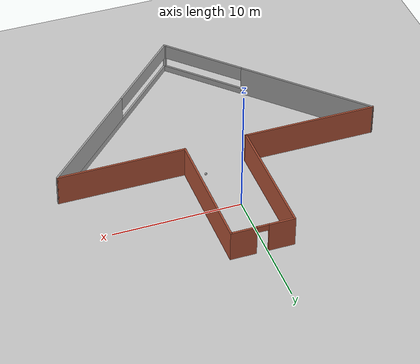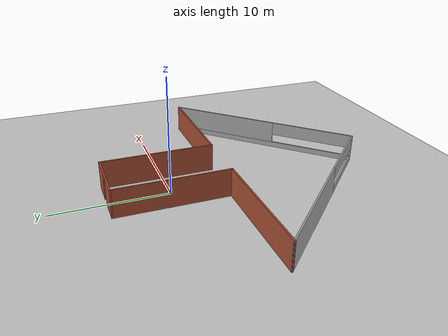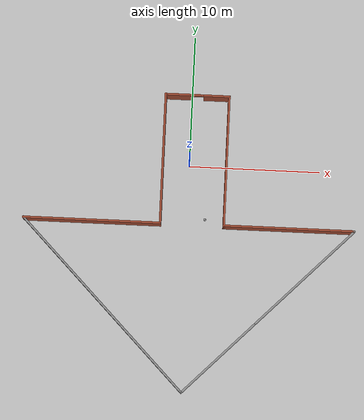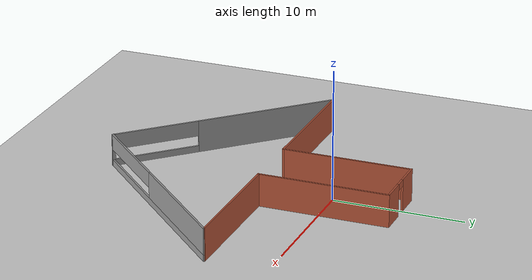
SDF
<sdf version="1.6">
 <world name="default">
  <plugin name="hello" filename="libhello.so"/>
  <light name="sun" type="directional">
   <pose>0 0 10 0 -0 0</pose>
   <diffuse>0.8 0.8 0.8 1</diffuse>
   <specular>0.2 0.2 0.2 1</specular>
   <attenuation>
    <range>1000</range>
    <constant>0.9</constant>
    <linear>0.01</linear>
    <quadratic>0.001</quadratic>
   </attenuation>
   <direction>-0.5 0.1 -0.9</direction>
  </light>
  <model name="ground_plane">
   <static>1</static>
   <link name="link">
    <collision name="collision">
     <geometry><plane><normal>0 0 1</normal><size>100 100</size></plane></geometry>
     <surface>
      <contact><collide_bitmask>65535</collide_bitmask></contact>
      <friction><ode><mu>100</mu><mu2>50</mu2></ode></friction>
     </surface>
    </collision>
    <visual name="visual">
     <cast_shadows>0</cast_shadows>
     <geometry><plane><normal>0 0 1</normal><size>100 100</size></plane></geometry>
     <material>
      <script><uri>file://media/materials/scripts/gazebo.material</uri><name>Gazebo/Grey</name></script>
     </material>
    </visual>
   </link>
  </model>
  <gravity>0 0 -9.8</gravity>
  <magnetic_field>6e-06 2.3e-05 -4.2e-05</magnetic_field>
  <atmosphere type="adiabatic"/>
  <physics name="default_physics" default="0" type="ode">
   <max_step_size>0.001</max_step_size>
   <real_time_factor>1</real_time_factor>
   <real_time_update_rate>1000</real_time_update_rate>
  </physics>
  <scene><ambient>0.4 0.4 0.4 1</ambient><background>0.7 0.7 0.7 1</background><shadows>1</shadows></scene>
  <spherical_coordinates>
   <surface_model>EARTH_WGS84</surface_model>
   <latitude_deg>0</latitude_deg>
   <longitude_deg>0</longitude_deg>
   <elevation>0</elevation>
   <heading_deg>0</heading_deg>
  </spherical_coordinates>
  <model name="FOR_PROJECT_1">
   <pose>0.14322 -6.05993 0 0 -0 0</pose>
   <link name="Wall_12">
    <collision name="Wall_12_Collision">
     <geometry><box><size>10 0.15 2.5</size></box></geometry>
     <pose>0 0 1.25 0 -0 0</pose>
    </collision>
    <visual name="Wall_12_Visual">
     <pose>0 0 1.25 0 -0 0</pose>
     <geometry><box><size>10 0.15 2.5</size></box></geometry>
     <material>
      <script><uri>file://media/materials/scripts/gazebo.material</uri><name>Gazebo/Bricks</name></script>
      <ambient>1 1 1 1</ambient>
     </material>
     <meta><layer>0</layer></meta>
    </visual>
    <pose>7.5816 1.45376 0 0 -0 0</pose>
   </link>
   <link name="Wall_19">
    <collision name="Wall_19_Collision">
     <geometry><box><size>10 0.15 2.5</size></box></geometry>
     <pose>0 0 1.25 0 -0 0</pose>
    </collision>
    <visual name="Wall_19_Visual">
     <pose>0 0 1.25 0 -0 0</pose>
     <geometry><box><size>10 0.15 2.5</size></box></geometry>
     <material>
      <script><uri>file://media/materials/scripts/gazebo.material</uri><name>Gazebo/Bricks</name></script>
      <ambient>1 1 1 1</ambient>
     </material>
     <meta><layer>0</layer></meta>
    </visual>
    <pose>-2.1934 6.37876 0 0 0 -1.5708</pose>
   </link>
   <link name="Wall_22">
    <collision name="Wall_22_Collision">
     <geometry><box><size>10.5 0.15 2.5</size></box></geometry>
     <pose>0 0 1.25 0 -0 0</pose>
    </collision>
    <visual name="Wall_22_Visual">
     <pose>0 0 1.25 0 -0 0</pose>
     <geometry><box><size>10.5 0.15 2.5</size></box></geometry>
     <material>
      <script><uri>file://media/materials/scripts/gazebo.material</uri><name>Gazebo/Bricks</name></script>
      <ambient>1 1 1 1</ambient>
     </material>
     <meta><layer>0</layer></meta>
    </visual>
    <pose>-7.3684 1.45376 0 0 -0 3.14159</pose>
   </link>
   <link name="Wall_24">
    <pose>-6.28521 -4.90947 0 0 0 -0.79372</pose>
    <visual name="Wall_24_Visual_0">
     <pose>-3.43027 0 1.25 0 -0 0</pose>
     <geometry><box><size>11.1395 0.15 2.5</size></box></geometry>
     <material>
      <script><uri>file://media/materials/scripts/gazebo.material</uri><name>Gazebo/Grey</name></script>
      <ambient>0 0 0 1</ambient>
     </material>
     <meta><layer>0</layer></meta>
    </visual>
    <collision name="Wall_24_Collision_0">
     <geometry><box><size>11.1395 0.15 2.5</size></box></geometry>
     <pose>-3.43027 0 1.25 0 -0 0</pose>
    </collision>
    <visual name="Wall_24_Visual_1">
     <pose>5.56973 0 0.25 0 -0 0</pose>
     <geometry><box><size>6.86053 0.15 0.5</size></box></geometry>
     <material>
      <script><uri>file://media/materials/scripts/gazebo.material</uri><name>Gazebo/Grey</name></script>
      <ambient>0 0 0 1</ambient>
     </material>
     <meta><layer>0</layer></meta>
    </visual>
    <collision name="Wall_24_Collision_1">
     <geometry><box><size>6.86053 0.15 0.5</size></box></geometry>
     <pose>5.56973 0 0.25 0 -0 0</pose>
    </collision>
    <visual name="Wall_24_Visual_2">
     <pose>8.87829 0 1.5 0 -0 0</pose>
     <geometry><box><size>0.243411 0.15 2</size></box></geometry>
     <material>
      <script><uri>file://media/materials/scripts/gazebo.material</uri><name>Gazebo/Grey</name></script>
      <ambient>0 0 0 1</ambient>
     </material>
     <meta><layer>0</layer></meta>
    </visual>
    <collision name="Wall_24_Collision_2">
     <geometry><box><size>0.243411 0.15 2</size></box></geometry>
     <pose>8.87829 0 1.5 0 -0 0</pose>
    </collision>
    <visual name="Wall_24_Visual_3">
     <pose>5.44803 0 1.9 0 -0 0</pose>
     <geometry><box><size>6.61712 0.15 1.2</size></box></geometry>
     <material>
      <script><uri>file://media/materials/scripts/gazebo.material</uri><name>Gazebo/Grey</name></script>
      <ambient>0 0 0 1</ambient>
     </material>
     <meta><layer>0</layer></meta>
    </visual>
    <collision name="Wall_24_Collision_3">
     <geometry><box><size>6.61712 0.15 1.2</size></box></geometry>
     <pose>5.44803 0 1.9 0 -0 0</pose>
    </collision>
   </link>
   <link name="Wall_29">
    <pose>6.25819 -4.92254 0 0 -0 0.790538</pose>
    <visual name="Wall_29_Visual_0">
     <pose>-8.97371 0 1.25 0 -0 0</pose>
     <geometry><box><size>0.07191 0.15 2.5</size></box></geometry>
     <material>
      <script><uri>file://media/materials/scripts/gazebo.material</uri><name>Gazebo/Grey</name></script>
      <ambient>0 0 0 1</ambient>
     </material>
     <meta><layer>0</layer></meta>
    </visual>
    <collision name="Wall_29_Collision_0">
     <geometry><box><size>0.07191 0.15 2.5</size></box></geometry>
     <pose>-8.97371 0 1.25 0 -0 0</pose>
    </collision>
    <visual name="Wall_29_Visual_1">
     <pose>0.035955 0 0.25 0 -0 0</pose>
     <geometry><box><size>17.9474 0.15 0.5</size></box></geometry>
     <material>
      <script><uri>file://media/materials/scripts/gazebo.material</uri><name>Gazebo/Grey</name></script>
      <ambient>0 0 0 1</ambient>
     </material>
     <meta><layer>0</layer></meta>
    </visual>
    <collision name="Wall_29_Collision_1">
     <geometry><box><size>17.9474 0.15 0.5</size></box></geometry>
     <pose>0.035955 0 0.25 0 -0 0</pose>
    </collision>
    <visual name="Wall_29_Visual_2">
     <pose>3.82569 0 1.5 0 -0 0</pose>
     <geometry><box><size>10.368 0.15 2</size></box></geometry>
     <material>
      <script><uri>file://media/materials/scripts/gazebo.material</uri><name>Gazebo/Grey</name></script>
      <ambient>0 0 0 1</ambient>
     </material>
     <meta><layer>0</layer></meta>
    </visual>
    <collision name="Wall_29_Collision_2">
     <geometry><box><size>10.368 0.15 2</size></box></geometry>
     <pose>3.82569 0 1.5 0 -0 0</pose>
    </collision>
    <visual name="Wall_29_Visual_3">
     <pose>-5.14803 0 1.9 0 -0 0</pose>
     <geometry><box><size>7.57946 0.15 1.2</size></box></geometry>
     <material>
      <script><uri>file://media/materials/scripts/gazebo.material</uri><name>Gazebo/Grey</name></script>
      <ambient>0 0 0 1</ambient>
     </material>
     <meta><layer>0</layer></meta>
    </visual>
    <collision name="Wall_29_Collision_3">
     <geometry><box><size>7.57946 0.15 1.2</size></box></geometry>
     <pose>-5.14803 0 1.9 0 -0 0</pose>
    </collision>
   </link>
   <link name="Wall_4">
    <pose>0.2316 11.3038 0 0 -0 3.14159</pose>
    <visual name="Wall_4_Visual_0">
     <pose>-1.47869 0 1.25 0 -0 0</pose>
     <geometry><box><size>2.04262 0.15 2.5</size></box></geometry>
     <material>
      <script><uri>file://media/materials/scripts/gazebo.material</uri><name>Gazebo/Bricks</name></script>
      <ambient>1 1 1 1</ambient>
     </material>
     <meta><layer>0</layer></meta>
    </visual>
    <collision name="Wall_4_Collision_0">
     <geometry><box><size>2.04262 0.15 2.5</size></box></geometry>
     <pose>-1.47869 0 1.25 0 -0 0</pose>
    </collision>
    <visual name="Wall_4_Visual_1">
     <pose>1.47131 0 1.25 0 -0 0</pose>
     <geometry><box><size>2.05738 0.15 2.5</size></box></geometry>
     <material>
      <script><uri>file://media/materials/scripts/gazebo.material</uri><name>Gazebo/Bricks</name></script>
      <ambient>1 1 1 1</ambient>
     </material>
     <meta><layer>0</layer></meta>
    </visual>
    <collision name="Wall_4_Collision_1">
     <geometry><box><size>2.05738 0.15 2.5</size></box></geometry>
     <pose>1.47131 0 1.25 0 -0 0</pose>
    </collision>
    <visual name="Wall_4_Visual_2">
     <pose>-0.007378 0 2.25 0 -0 0</pose>
     <geometry><box><size>0.9 0.15 0.5</size></box></geometry>
     <material>
      <script><uri>file://media/materials/scripts/gazebo.material</uri><name>Gazebo/Bricks</name></script>
      <ambient>1 1 1 1</ambient>
     </material>
     <meta><layer>0</layer></meta>
    </visual>
    <collision name="Wall_4_Collision_2">
     <geometry><box><size>0.9 0.15 0.5</size></box></geometry>
     <pose>-0.007378 0 2.25 0 -0 0</pose>
    </collision>
   </link>
   <link name="Wall_8">
    <collision name="Wall_8_Collision">
     <geometry><box><size>10 0.15 2.5</size></box></geometry>
     <pose>0 0 1.25 0 -0 0</pose>
    </collision>
    <visual name="Wall_8_Visual">
     <pose>0 0 1.25 0 -0 0</pose>
     <geometry><box><size>10 0.15 2.5</size></box></geometry>
     <material>
      <script><uri>file://media/materials/scripts/gazebo.material</uri><name>Gazebo/Bricks</name></script>
      <ambient>1 1 1 1</ambient>
     </material>
     <meta><layer>0</layer></meta>
    </visual>
    <pose>2.6566 6.37876 0 0 0 -1.5708</pose>
   </link>
   <static>1</static>
  </model>
  <model name="my_ball">
   <link name="link_0">
    <inertial>
     <mass>1</mass>
     <inertia><ixx>0.1</ixx><ixy>0</ixy><ixz>0</ixz><iyy>0.1</iyy><iyz>0</iyz><izz>0.1</izz></inertia>
    </inertial>
    <visual name="visual">
     <geometry><sphere><radius>0.1</radius></sphere></geometry>
     <material>
      <lighting>1</lighting>
      <script><uri>file://media/materials/scripts/gazebo.material</uri><name>Gazebo/Grey</name></script>
      <shader type="pixel"><normal_map>__default__</normal_map></shader>
      <ambient>1 1 1 1</ambient>
      <diffuse>1 1 1 1</diffuse>
      <specular>1 1 1 1</specular>
      <emissive>1 1 1 0.4</emissive>
     </material>
    </visual>
    <collision name="collision">
     <geometry><sphere><radius>0.1</radius></sphere></geometry>
     <surface>
      <friction>
       <ode><mu>1</mu><mu2>1</mu2><fdir1>0 0 0</fdir1><slip1>0</slip1><slip2>0</slip2></ode>
       <torsional>
        <coefficient>1</coefficient>
        <patch_radius>0</patch_radius>
        <surface_radius>0</surface_radius>
        <use_patch_radius>1</use_patch_radius>
        <ode><slip>0</slip></ode>
       </torsional>
      </friction>
      <bounce><restitution_coefficient>0</restitution_coefficient><threshold>1e+06</threshold></bounce>
      <contact>
       <collide_without_contact>0</collide_without_contact>
       <collide_without_contact_bitmask>1</collide_without_contact_bitmask>
       <collide_bitmask>1</collide_bitmask>
       <ode>
        <soft_cfm>0</soft_cfm>
        <soft_erp>0.2</soft_erp>
        <kp>1e+13</kp>
        <kd>1</kd>
        <max_vel>0.01</max_vel>
        <min_depth>0</min_depth>
       </ode>
       <bullet>
        <split_impulse>1</split_impulse>
        <split_impulse_penetration_threshold>-0.01</split_impulse_penetration_threshold>
        <soft_cfm>0</soft_cfm>
        <soft_erp>0.2</soft_erp>
        <kp>1e+13</kp>
        <kd>1</kd>
       </bullet>
      </contact>
     </surface>
    </collision>
   </link>
   <static>0</static>
   <pose>1.34392 -4.02616 0.1 0 -0 0</pose>
  </model>
 </world>
</sdf>
